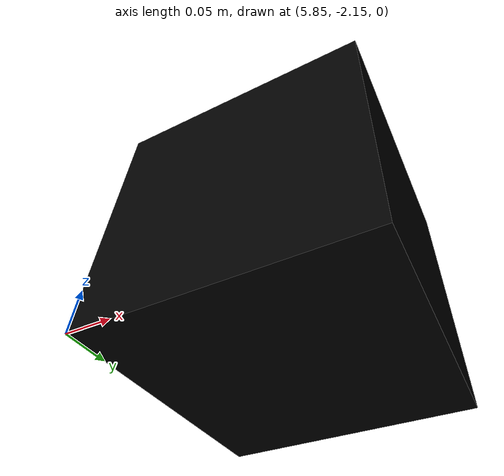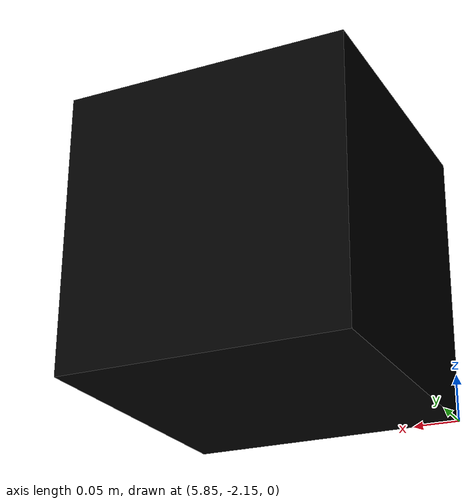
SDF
<?xml version='1.0'?>
<sdf version='1.4'>
  <model name="AruCo_Block_15">
    <static>true</static>
    <link name='chassis'>
            <pose>6 -2 0.15 0 0 0</pose>

            <collision name='collision'>
              <geometry>
                <box>
                  <size>.3 .3 .3</size>
                </box>
              </geometry>
            </collision>

            <visual name='visual_15'>
              <geometry>
                <box>
                  <size>.3 .3 .3</size>
                </box>
              </geometry>
              <material>
                <script>
                <uri>model://AruCo_Block_15/materials/scripts</uri>
                <uri>model://AruCo_Block_15/materials/textures</uri>
                <name>block15</name>
                </script>
                <ambient>0 0 0 1</ambient>
                <diffuse>0 0 0 1</diffuse>
                <specular>0 0 0 0</specular>
                <emissive>1 1 1 1</emissive>
              </material>
            </visual>
          </link>
  </model>
</sdf>
